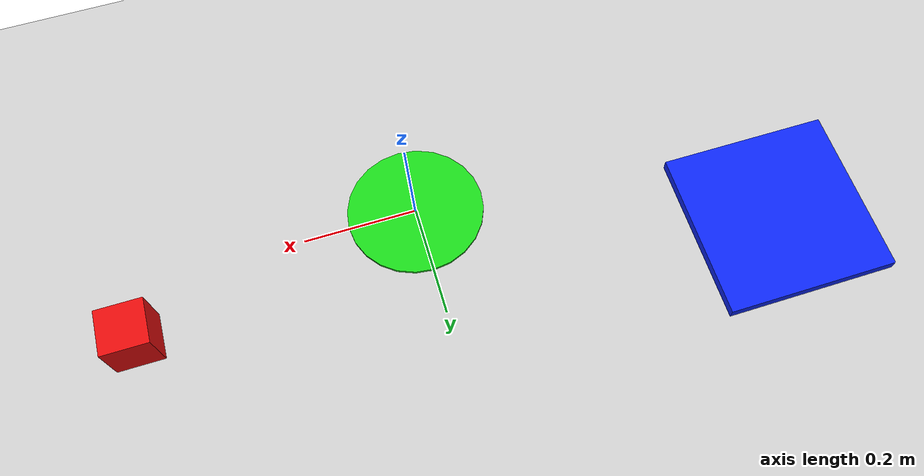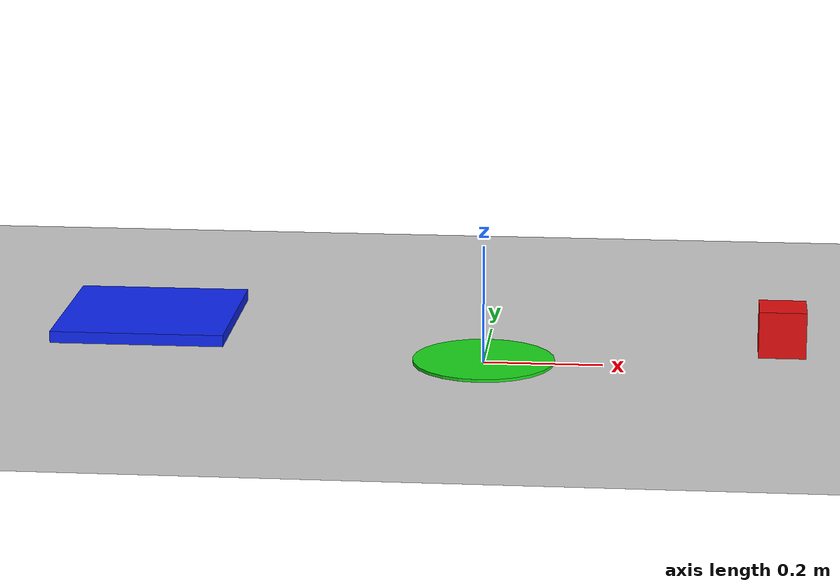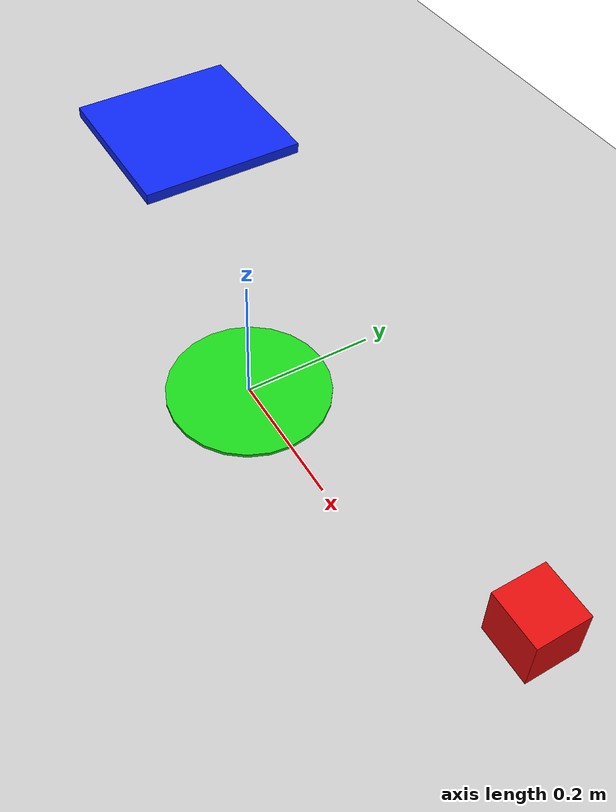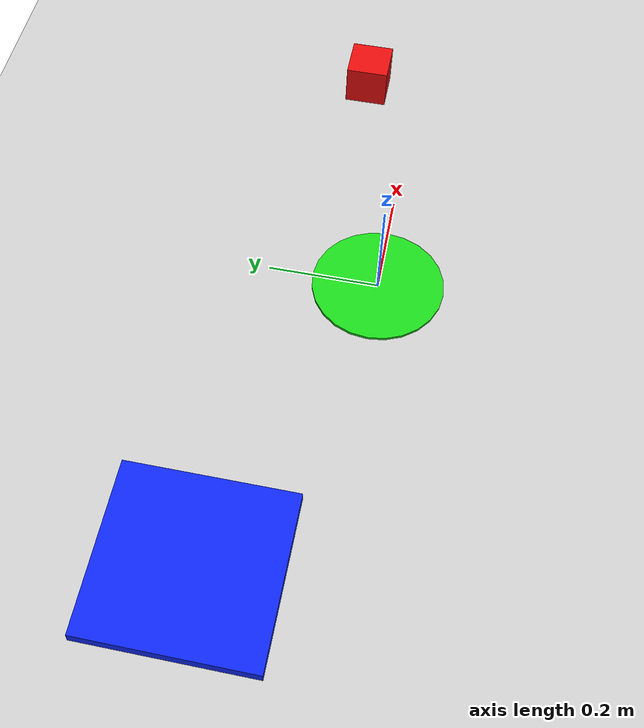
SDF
<?xml version="1.0" ?>
<sdf version="1.10">
  <world name="default">

    <!-- Tes plugins originaux — inchangés -->
    <plugin filename="gz-sim-physics-system"
            name="gz::sim::systems::Physics"/>
    <plugin filename="gz-sim-scene-broadcaster-system"
            name="gz::sim::systems::SceneBroadcaster"/>
    <plugin filename="gz-sim-contact-system"
            name="gz::sim::systems::Contact"/>
    <plugin filename="gz-sim-user-commands-system"
            name="gz::sim::systems::UserCommands"/>

    <!-- AJOUT : plugin capteurs (obligatoire pour les caméras NAO) -->
    <plugin filename="gz-sim-sensors-system"
            name="gz::sim::systems::Sensors">
      <render_engine>ogre</render_engine>
    </plugin>

    <!-- Ta gravité originale — inchangée -->
    <gravity>0 0 -9.81</gravity>

    <!-- Ta physique originale — inchangée (nao_physics, dartsim, 1kHz) -->
    <physics name="nao_physics" type="dartsim">
      <max_step_size>0.001</max_step_size>
      <real_time_update_rate>1000</real_time_update_rate>
      <real_time_factor>1.0</real_time_factor>
    </physics>

    <!-- Ta lumière originale — inchangée -->
    <light name="sun" type="directional">
      <cast_shadows>true</cast_shadows>
      <pose>0 0 10 0 0 0</pose>
      <diffuse>0.8 0.8 0.8 1</diffuse>
      <specular>0.2 0.2 0.2 1</specular>
      <attenuation>
        <range>1000</range>
        <constant>0.9</constant>
        <linear>0.01</linear>
        <quadratic>0.001</quadratic>
      </attenuation>
      <direction>-0.5 0.1 -0.9</direction>
    </light>

    <!-- AJOUT : lumière ambiante pour mieux voir les couleurs rouge/bleu -->
    <light name="ambient_light" type="point">
      <pose>0 0 3 0 0 0</pose>
      <diffuse>0.4 0.4 0.4 1</diffuse>
      <specular>0.1 0.1 0.1 1</specular>
      <attenuation>
        <range>20</range>
        <constant>0.5</constant>
        <linear>0.02</linear>
        <quadratic>0.001</quadratic>
      </attenuation>
    </light>

    <!-- Ton sol original — inchangé (taille 100x100, friction 1.1) -->
    <model name="ground_plane">
      <static>true</static>
      <link name="link">
        <collision name="collision">
          <geometry>
            <plane>
              <normal>0 0 1</normal>
              <size>100 100</size>
            </plane>
          </geometry>
          <surface>
            <friction>
              <ode>
                <mu>1.1</mu>
                <mu2>1.1</mu2>
                <fdir1>1 0 0</fdir1>
                <slip1>0.0</slip1>
                <slip2>0.0</slip2>
              </ode>
            </friction>
            <contact>
              <ode>
                <kp>1000000.0</kp>
                <kd>10.0</kd>
                <max_vel>0.2</max_vel>
                <min_depth>0.001</min_depth>
              </ode>
            </contact>
            <bounce>
              <restitution_coefficient>0.0</restitution_coefficient>
              <threshold>1000000.0</threshold>
            </bounce>
          </surface>
        </collision>
        <visual name="visual">
          <geometry>
            <plane>
              <normal>0 0 1</normal>
              <size>100 100</size>
            </plane>
          </geometry>
          <material>
            <ambient>0.8 0.8 0.8 1</ambient>
            <diffuse>0.8 0.8 0.8 1</diffuse>
            <specular>0.2 0.2 0.2 1</specular>
          </material>
        </visual>
      </link>
    </model>

    <!-- AJOUT : boîte ROUGE à ramasser (devant le robot) -->
    <model name="red_box">
      <pose>0.50 0.10 0.041 0 0 0</pose>
      <static>false</static>
      <link name="link">
        <inertial>
          <mass>0.15</mass>
          <inertia>
            <ixx>0.000016</ixx><iyy>0.000016</iyy><izz>0.000016</izz>
            <ixy>0</ixy><ixz>0</ixz><iyz>0</iyz>
          </inertia>
        </inertial>
        <collision name="col">
          <geometry>
            <box><size>0.08 0.08 0.08</size></box>
          </geometry>
          <surface>
            <friction>
              <ode><mu>0.8</mu><mu2>0.8</mu2></ode>
            </friction>
          </surface>
        </collision>
        <visual name="vis">
          <geometry>
            <box><size>0.08 0.08 0.08</size></box>
          </geometry>
          <material>
            <ambient>0.9 0.05 0.05 1</ambient>
            <diffuse>0.9 0.05 0.05 1</diffuse>
            <specular>0.3 0.1 0.1 1</specular>
          </material>
        </visual>
      </link>
    </model>

    <!-- AJOUT : zone BLEUE de dépôt (derrière le robot) -->
    <model name="blue_zone">
      <pose>-0.60 0.20 0.010 0 0 0</pose>
      <static>true</static>
      <link name="link">
        <collision name="col">
          <geometry>
            <box><size>0.30 0.30 0.02</size></box>
          </geometry>
        </collision>
        <visual name="vis">
          <geometry>
            <box><size>0.30 0.30 0.02</size></box>
          </geometry>
          <material>
            <ambient>0.05 0.15 0.95 1</ambient>
            <diffuse>0.05 0.15 0.95 1</diffuse>
            <specular>0.2 0.2 0.5 1</specular>
          </material>
        </visual>
      </link>
    </model>

    <!-- AJOUT : marqueur vert position de départ du robot -->
    <model name="start_marker">
      <pose>0 0 0.003 0 0 0</pose>
      <static>true</static>
      <link name="link">
        <collision name="col">
          <geometry>
            <cylinder><radius>0.12</radius><length>0.005</length></cylinder>
          </geometry>
        </collision>
        <visual name="vis">
          <geometry>
            <cylinder><radius>0.12</radius><length>0.005</length></cylinder>
          </geometry>
          <material>
            <ambient>0.1 0.85 0.1 1</ambient>
            <diffuse>0.1 0.85 0.1 1</diffuse>
          </material>
        </visual>
      </link>
    </model>

    <!-- AJOUT : murs invisibles pour garder la boîte dans l'arène -->
    <model name="wall_north">
      <pose>0 2.0 0.25 0 0 0</pose>
      <static>true</static>
      <link name="link">
        <collision name="col">
          <geometry><box><size>4.0 0.05 0.5</size></box></geometry>
        </collision>
      </link>
    </model>
    <model name="wall_south">
      <pose>0 -2.0 0.25 0 0 0</pose>
      <static>true</static>
      <link name="link">
        <collision name="col">
          <geometry><box><size>4.0 0.05 0.5</size></box></geometry>
        </collision>
      </link>
    </model>
    <model name="wall_east">
      <pose>2.0 0 0.25 0 0 0</pose>
      <static>true</static>
      <link name="link">
        <collision name="col">
          <geometry><box><size>0.05 4.0 0.5</size></box></geometry>
        </collision>
      </link>
    </model>
    <model name="wall_west">
      <pose>-2.0 0 0.25 0 0 0</pose>
      <static>true</static>
      <link name="link">
        <collision name="col">
          <geometry><box><size>0.05 4.0 0.5</size></box></geometry>
        </collision>
      </link>
    </model>

  </world>
</sdf>
